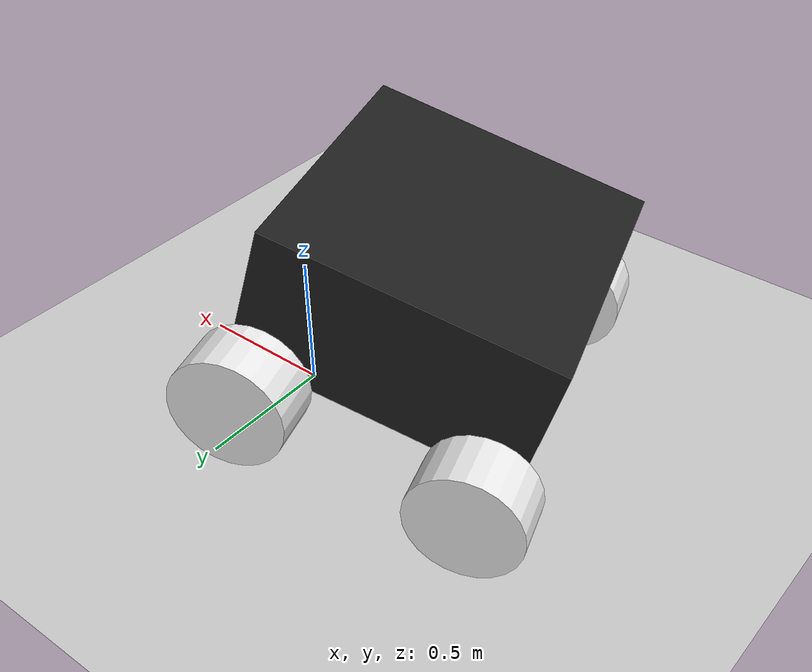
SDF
<sdf version="1.7">
 <world name="default">
  <light name="sun" type="directional">
   <pose>0 0 10 0 -0 0</pose>
   <diffuse>0.8 0.8 0.8 1</diffuse>
   <specular>0.2 0.2 0.2 1</specular>
   <attenuation>
    <range>1000</range>
    <constant>0.9</constant>
    <linear>0.01</linear>
    <quadratic>0.001</quadratic>
   </attenuation>
   <direction>-0.5 0.1 -0.9</direction>
   <spot><inner_angle>0</inner_angle><outer_angle>0</outer_angle><falloff>0</falloff></spot>
  </light>
  <model name="ground_plane">
   <static>1</static>
   <link name="link">
    <collision name="collision">
     <geometry><plane><normal>0 0 1</normal><size>100 100</size></plane></geometry>
     <surface>
      <contact><collide_bitmask>65535</collide_bitmask></contact>
      <friction><ode><mu>100</mu><mu2>50</mu2></ode></friction>
     </surface>
    </collision>
    <visual name="visual">
     <cast_shadows>0</cast_shadows>
     <geometry><plane><normal>0 0 1</normal><size>100 100</size></plane></geometry>
     <material>
      <script><uri>file://media/materials/scripts/gazebo.material</uri><name>Gazebo/Grey</name></script>
     </material>
    </visual>
   </link>
  </model>
  <gravity>0 0 -9.8</gravity>
  <magnetic_field>6e-06 2.3e-05 -4.2e-05</magnetic_field>
  <atmosphere type="adiabatic"/>
  <physics type="ode">
   <max_step_size>0.001</max_step_size>
   <real_time_factor>1</real_time_factor>
   <real_time_update_rate>1000</real_time_update_rate>
  </physics>
  <scene><ambient>0.4 0.4 0.4 1</ambient><background>0.7 0.7 0.7 1</background><shadows>1</shadows></scene>
  <spherical_coordinates>
   <surface_model>EARTH_WGS84</surface_model>
   <latitude_deg>0</latitude_deg>
   <longitude_deg>0</longitude_deg>
   <elevation>0</elevation>
   <heading_deg>0</heading_deg>
  </spherical_coordinates>
  <model name="project.urdf">
   <link name="dummy">
    <inertial>
     <mass>5</mass>
     <inertia><ixx>0.13</ixx><ixy>0</ixy><ixz>0</ixz><iyy>0.21</iyy><iyz>0</iyz><izz>0.13</izz></inertia>
    </inertial>
    <collision name="dummy_fixed_joint_lump__base_link_collision">
     <geometry><box><size>1 1 0.5</size></box></geometry>
    </collision>
    <visual name="dummy_fixed_joint_lump__base_link_visual">
     <geometry><box><size>1 1 0.5</size></box></geometry>
     <material>
      <script><name>Gazebo/Black</name><uri>file://media/materials/scripts/gazebo.material</uri></script>
     </material>
    </visual>
   </link>
   <joint name="joint_left_wheel_back" type="revolute">
    <pose relative_to="dummy">-0.4 0.6 -0.3 0 -0 0</pose>
    <parent>dummy</parent>
    <child>left_wheel_back</child>
    <axis>
     <xyz>0 1 0</xyz>
     <limit><lower>-1e+16</lower><upper>1e+16</upper></limit>
     <dynamics><spring_reference>0</spring_reference><spring_stiffness>0</spring_stiffness></dynamics>
    </axis>
   </joint>
   <link name="left_wheel_back">
    <pose relative_to="joint_left_wheel_back">0 0 0 0 -0 0</pose>
    <inertial>
     <mass>0.5</mass>
     <inertia><ixx>0.01</ixx><ixy>0</ixy><ixz>0</ixz><iyy>0.005</iyy><iyz>0</iyz><izz>0.005</izz></inertia>
    </inertial>
    <collision name="left_wheel_back_collision">
     <pose>0 0 0 1.57079 -0 0</pose>
     <geometry><cylinder><length>0.2</length><radius>0.2</radius></cylinder></geometry>
    </collision>
    <visual name="left_wheel_back_visual">
     <pose>0 0 0 1.57079 -0 0</pose>
     <geometry><cylinder><length>0.2</length><radius>0.2</radius></cylinder></geometry>
     <material>
      <script><name>Gazebo/White</name><uri>file://media/materials/scripts/gazebo.material</uri></script>
     </material>
    </visual>
   </link>
   <joint name="joint_left_wheel_front" type="revolute">
    <pose relative_to="dummy">0.4 0.6 -0.3 0 -0 0</pose>
    <parent>dummy</parent>
    <child>left_wheel_front</child>
    <axis>
     <xyz>0 1 0</xyz>
     <limit><lower>-1e+16</lower><upper>1e+16</upper></limit>
     <dynamics><spring_reference>0</spring_reference><spring_stiffness>0</spring_stiffness></dynamics>
    </axis>
   </joint>
   <link name="left_wheel_front">
    <pose relative_to="joint_left_wheel_front">0 0 0 0 -0 0</pose>
    <inertial>
     <mass>0.5</mass>
     <inertia><ixx>0.01</ixx><ixy>0</ixy><ixz>0</ixz><iyy>0.005</iyy><iyz>0</iyz><izz>0.005</izz></inertia>
    </inertial>
    <collision name="left_wheel_front_collision">
     <pose>0 0 0 1.57079 -0 0</pose>
     <geometry><cylinder><length>0.2</length><radius>0.2</radius></cylinder></geometry>
    </collision>
    <visual name="left_wheel_front_visual">
     <pose>0 0 0 1.57079 -0 0</pose>
     <geometry><cylinder><length>0.2</length><radius>0.2</radius></cylinder></geometry>
     <material>
      <script><name>Gazebo/White</name><uri>file://media/materials/scripts/gazebo.material</uri></script>
     </material>
    </visual>
   </link>
   <joint name="joint_right_wheel_back" type="revolute">
    <pose relative_to="dummy">-0.4 -0.6 -0.3 0 -0 0</pose>
    <parent>dummy</parent>
    <child>right_wheel_back</child>
    <axis>
     <xyz>0 1 0</xyz>
     <limit><lower>-1e+16</lower><upper>1e+16</upper></limit>
     <dynamics><spring_reference>0</spring_reference><spring_stiffness>0</spring_stiffness></dynamics>
    </axis>
   </joint>
   <link name="right_wheel_back">
    <pose relative_to="joint_right_wheel_back">0 0 0 0 -0 0</pose>
    <inertial>
     <mass>0.5</mass>
     <inertia><ixx>0.01</ixx><ixy>0</ixy><ixz>0</ixz><iyy>0.005</iyy><iyz>0</iyz><izz>0.005</izz></inertia>
    </inertial>
    <collision name="right_wheel_back_collision">
     <pose>0 0 0 1.57079 -0 0</pose>
     <geometry><cylinder><length>0.2</length><radius>0.2</radius></cylinder></geometry>
    </collision>
    <visual name="right_wheel_back_visual">
     <pose>0 0 0 1.57079 -0 0</pose>
     <geometry><cylinder><length>0.2</length><radius>0.2</radius></cylinder></geometry>
     <material>
      <script><name>Gazebo/White</name><uri>file://media/materials/scripts/gazebo.material</uri></script>
     </material>
    </visual>
   </link>
   <joint name="joint_right_wheel_front" type="revolute">
    <pose relative_to="dummy">0.4 -0.6 -0.3 0 -0 0</pose>
    <parent>dummy</parent>
    <child>right_wheel_front</child>
    <axis>
     <xyz>0 1 0</xyz>
     <limit><lower>-1e+16</lower><upper>1e+16</upper></limit>
     <dynamics><spring_reference>0</spring_reference><spring_stiffness>0</spring_stiffness></dynamics>
    </axis>
   </joint>
   <link name="right_wheel_front">
    <pose relative_to="joint_right_wheel_front">0 0 0 0 -0 0</pose>
    <inertial>
     <mass>0.5</mass>
     <inertia><ixx>0.01</ixx><ixy>0</ixy><ixz>0</ixz><iyy>0.005</iyy><iyz>0</iyz><izz>0.005</izz></inertia>
    </inertial>
    <collision name="right_wheel_front_collision">
     <pose>0 0 0 1.57079 -0 0</pose>
     <geometry><cylinder><length>0.2</length><radius>0.2</radius></cylinder></geometry>
    </collision>
    <visual name="right_wheel_front_visual">
     <pose>0 0 0 1.57079 -0 0</pose>
     <geometry><cylinder><length>0.2</length><radius>0.2</radius></cylinder></geometry>
     <material>
      <script><name>Gazebo/White</name><uri>file://media/materials/scripts/gazebo.material</uri></script>
     </material>
    </visual>
   </link>
   <static>0</static>
   <plugin name="skid_steer_drive_controller" filename="libgazebo_ros_skid_steer_drive.so">
    <updateRate>100.0</updateRate>
    <robotNamespace>/</robotNamespace>
    <leftFrontJoint>joint_left_wheel_front</leftFrontJoint>
    <rightFrontJoint>joint_left_wheel_back</rightFrontJoint>
    <leftRearJoint>joint_right_wheel_front</leftRearJoint>
    <rightRearJoint>joint_right_wheel_back</rightRearJoint>
    <wheelSeparation>1</wheelSeparation>
    <wheelDiameter>0.4</wheelDiameter>
    <robotBaseFrame>base_link</robotBaseFrame>
    <torque>20</torque>
    <topicName>cmd_vel</topicName>
    <broadcastTF>0</broadcastTF>
   </plugin>
   <pose>-0.501758 -0.149695 0.601123 1e-06 -0.287542 0.320759</pose>
  </model>
 </world>
</sdf>
